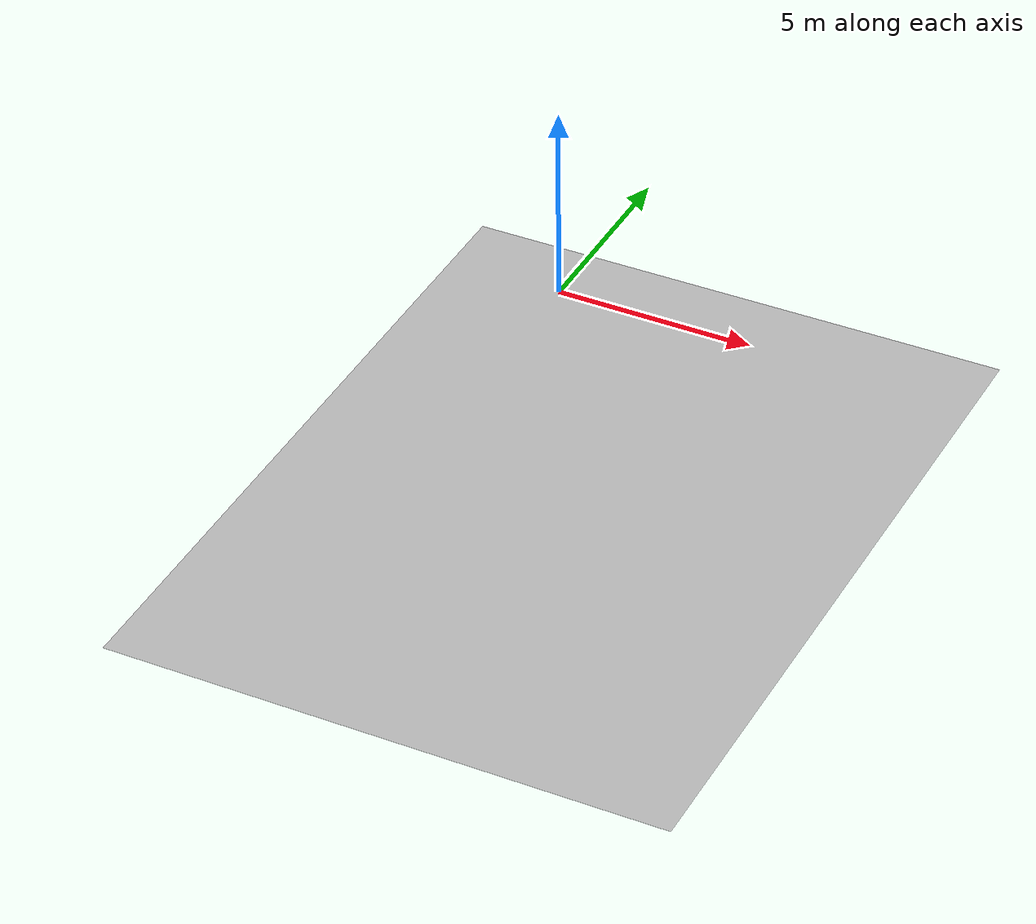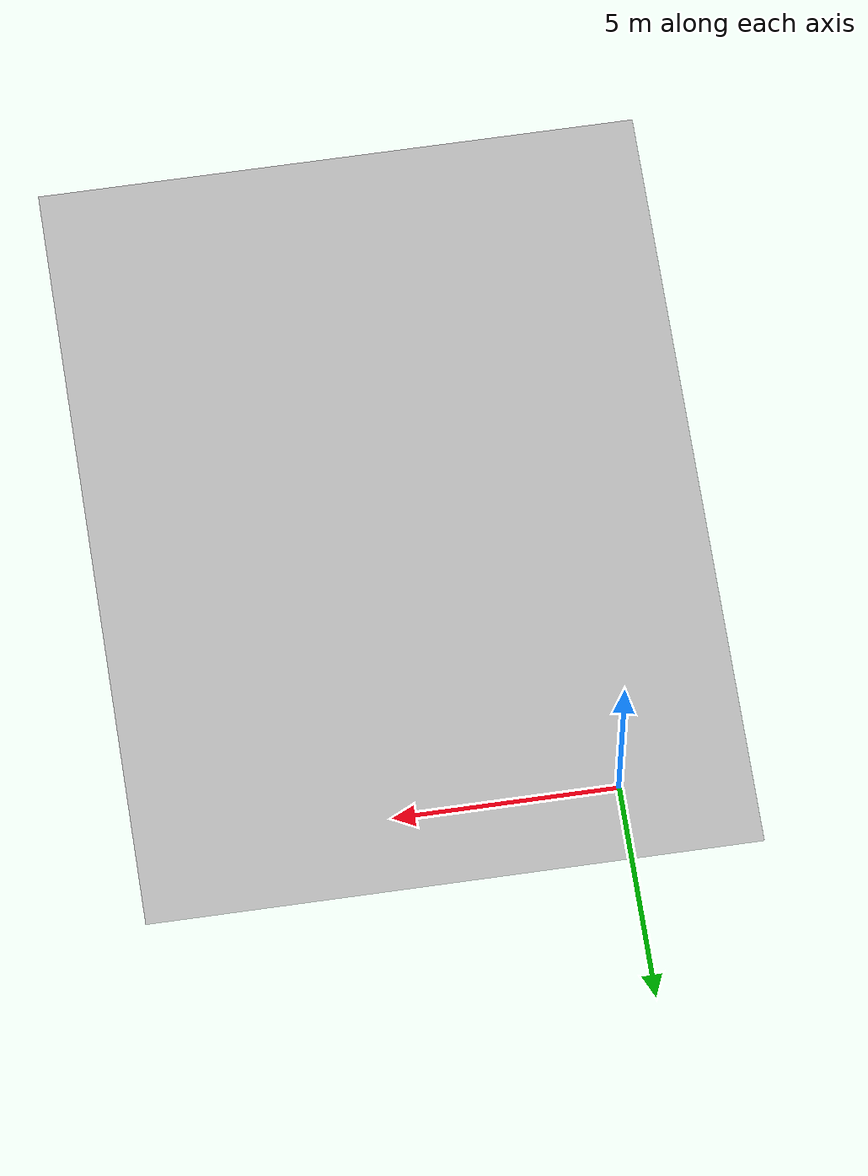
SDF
<sdf version='1.6'>
  <model name='field'>
  <static>true</static>
    <link name='base_link'>
    <collision name="collision">
        <geometry>
            <mesh>
                <scale>1 1 1</scale>
                <uri>model://field/field.dae</uri>
            </mesh>
        </geometry>
    </collision>
      <visual name='base_link_visual'>
        <pose frame=''>0 0 0 0 0 0</pose>
        <geometry>
          <mesh>
            <scale>1 1 1</scale>
            <uri>model://field/field.dae</uri>
          </mesh>
        </geometry>
      </visual>
    </link>
  </model>
</sdf>
